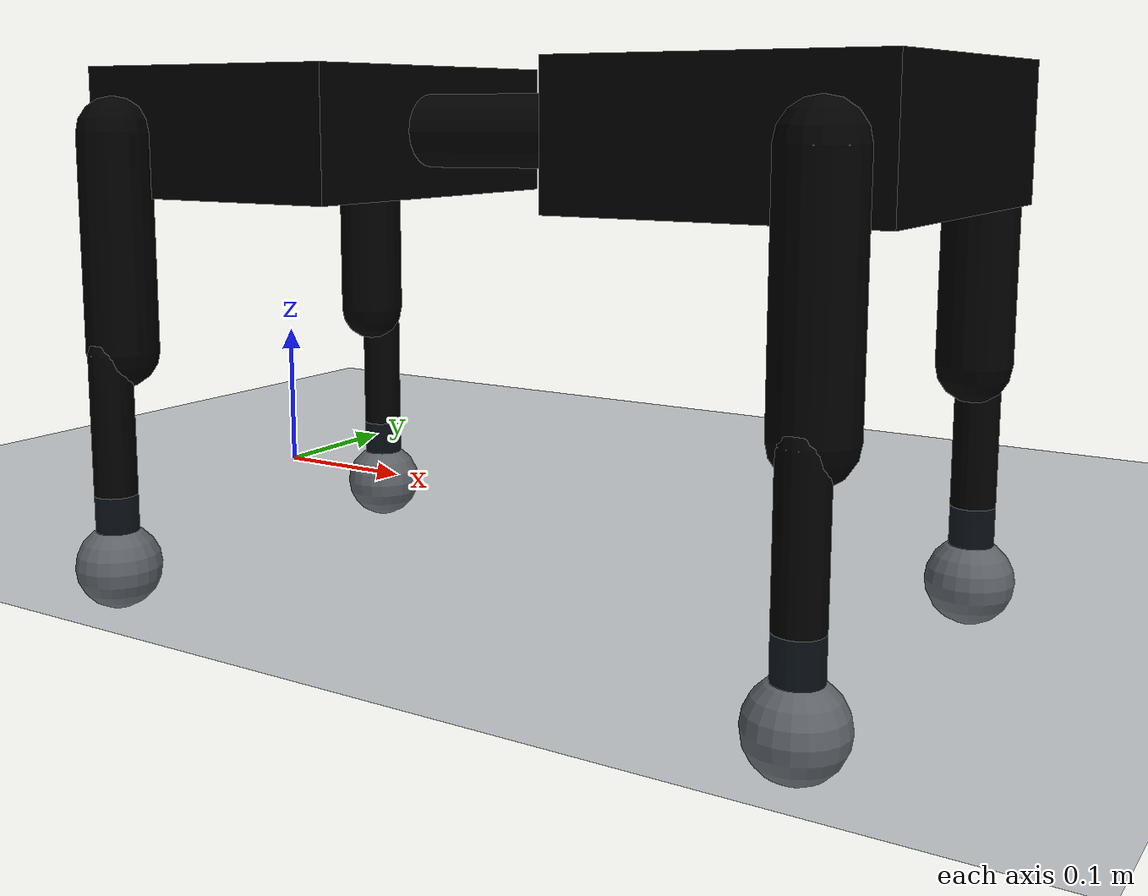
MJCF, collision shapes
<mujoco model="spined_dog">
      <compiler angle="radian" meshdir="./meshes/" balanceinertia="true"/>
      <option timestep="1e-3"
                  iterations="1000"
                  tolerance="1e-8"
                  impratio="1"
                  gravity="0 0 -9.81"
                  solver="CG"
                  cone="elliptic"
                  noslip_iterations="2"/>
      <asset>
            <mesh name="front_body" file="./simplify_front_body.stl" scale="0.001 0.001 0.001"/>
            <mesh name="front_left_leg_upper" file="./front_left_leg_upper.stl"
                  scale="0.001 0.001 0.001"/>
            <mesh name="front_left_leg_lower" file="./front_leg_lower.stl"
                  scale="0.001 0.001 0.001"/>
            <mesh name="front_right_leg_upper" file="./front_right_leg_upper.stl"
                  scale="0.001 0.001 0.001"/>
            <mesh name="front_right_leg_lower" file="./front_leg_lower.stl"
                  scale="0.001 0.001 0.001"/>
            <mesh name="front_spine" file="./front_mid_spine.stl" scale="0.001 0.001 0.001"/>
            <mesh name="hind_spine" file="./hind_mid_spine.stl" scale="0.001 0.001 0.001"/>
            <mesh name="hind_body" file="./simplify_hind_body.stl" scale="0.001 0.001 0.001"/>
            <mesh name="hind_left_leg_upper" file="./hind_left_leg_upper.stl"
                  scale="0.001 0.001 0.001"/>
            <mesh name="hind_left_leg_lower" file="./hind_leg_lower.stl"
                  scale="0.001 0.001 0.001"/>
            <mesh name="hind_right_leg_upper" file="./hind_right_leg_upper.stl"
                  scale="0.001 0.001 0.001"/>
            <mesh name="hind_right_leg_lower" file="./hind_leg_lower.stl"
                  scale="0.001 0.001 0.001"/>

            <texture builtin="gradient" height="256" rgb1=".9 .9 1." rgb2=".2 .3 .4" type="skybox"
                  width="256"/>
            <texture builtin="checker" height="512" name="texplane" rgb1=".2 .3 .4" rgb2=".1 0.15 0.2"
                  type="2d"
                  width="512"/>
            <material name="floorplane" reflectance="0.2" texrepeat="5 5" texture="texplane"
                        texuniform="true"/>
      </asset>

      <default>
            <default class="spined_dog_defaults">
                  <joint axis="0 1 0" range="-10 10" actuatorfrcrange="-120 120" damping="0.1" frictionloss="0.1"/>
                  <motor ctrllimited="true" ctrlrange="-120 120" gear="1"/>
            </default>
            <default class="visual">
                  <geom contype="0" conaffinity="0" group="1" density="0"/>
            </default>
            <default class="foot_collision">
                  <geom type="sphere" size="0.03" contype="2" conaffinity="1" group="3"/>
            </default>
            <default class="body_collision">
                  <geom type="box" contype="2" conaffinity="1" group="3" density="0" rgba="0 0 0 0"/>
            </default>
            <default class="link_collision">
                  <geom type="capsule" contype="2" conaffinity="1" group="3" density="0" rgba="0 0 0 0"/>
            </default>
      </default>

    <worldbody>
    <geom name="floor0" pos="0. 0. 0." size="30 30 0.1" type="plane" contype="1" conaffinity="1" priority="1"
          friction="1 0.005 0.0001" material="floorplane"/>
    <light directional="true" ambient="0.2 0.2 0.2" diffuse="0.8 0.8 0.8" specular="0.3 0.3 0.3"
           castshadow="false" pos="0 0 4" dir="0 0 -1" name="light0"/>

    <body name="hind_body" pos="0 0 0.25" childclass="spined_dog_defaults">
      <freejoint name="root_joint"/>
      <inertial pos="0 0 0" mass="2.044" diaginertia="0.01614 0.007591 0.02169"/>
      <geom class="visual" type="mesh" mesh="hind_body"/>
      <geom name="hind_body_collision" class="body_collision" pos="0.037 0 0" size="0.105 0.125 0.045"/>
      <body name="hind_left_leg_upper" pos="-0.032496964 0.137389577 -0.00028757">
        <inertial pos="0.000884 0.011774 -0.058206" mass="0.252259" diaginertia="0.000873 0.000942 0.000192"/>
        <joint name="joint_hind_left_leg_upper" pos="0 0 0"/>
        <geom class="visual" type="mesh" mesh="hind_left_leg_upper"/>
        <geom name="hind_left_leg_upper_collision" class="link_collision" fromto="0 0 0 0 0 -0.151" size="0.025"/>
        <body name="hind_left_leg_lower" pos="0 0.012 -0.151">
          <inertial pos="0.000327 0 -0.061393" mass="0.051" diaginertia="0.000223 0.000225 0.000005078"/>
          <joint name="joint_hind_left_leg_lower" pos="0 0 0"/>
          <geom class="visual" type="mesh" mesh="hind_left_leg_lower"/>
          <geom name="hind_left_leg_lower_collision" class="link_collision" fromto="0 0 0 0 0 -0.151" size="0.015"/>
          <body name="hind_left_foot" pos="0 0 -0.151">
            <inertial pos="0 0 0" mass="0.01" diaginertia="1e-05 1e-05 1e-05"/>
            <site name="hind_left_foot_site" pos="0 0 0" size="0.01"/>
            <geom name="hind_left_foot_visual" class="visual" type="sphere" size="0.028"/>
            <geom name="hind_left_foot_collision" class="foot_collision"/>
          </body>
        </body>
      </body>
      <body name="hind_right_leg_upper" pos="-0.032496964 -0.136610423 -0.00028757">
        <inertial pos="0.000883 -0.011774 -0.058205" mass="0.252259" diaginertia="0.000873 0.000942 0.000192"/>
        <joint name="joint_hind_right_leg_upper" pos="0 0 0"/>
        <geom class="visual" type="mesh" mesh="hind_right_leg_upper"/>
        <geom name="hind_right_leg_upper_collision" class="link_collision" fromto="0 0 0 0 0 -0.151" size="0.025"/>
        <body name="hind_right_leg_lower" pos="0 -0.012 -0.151">
          <inertial pos="0.000327 0 -0.061393" mass="0.051" diaginertia="0.000223 0.000225 0.000005078"/>
          <joint name="joint_hind_right_leg_lower" pos="0 0 0"/>
          <geom class="visual" type="mesh" mesh="hind_right_leg_lower"/>
          <geom name="hind_right_leg_lower_collision" class="link_collision" fromto="0 0 0 0 0 -0.151" size="0.015"/>
          <body name="hind_right_foot" pos="0 0 -0.151">
            <inertial pos="0 0 0" mass="0.01" diaginertia="1e-05 1e-05 1e-05"/>
            <site name="hind_right_foot_site" pos="0 0 0" size="0.01"/>
            <geom name="hind_right_foot_visual" class="visual" type="sphere" size="0.028"/>
            <geom name="hind_right_foot_collision" class="foot_collision"/>
          </body>
        </body>
      </body>
      <body name="hind_spine" pos="0.106797362 -0.019360423 0.000984733">
        <inertial pos="0.109455866 0.014797864 0" mass="0.399" diaginertia="0.0001953 0.0005357 0.0004759"/>
        <joint name="joint_hind_spine" pos="0 0 0"/>
        <geom class="visual" type="mesh" mesh="hind_spine"/>
        <geom name="hind_spine_collision" class="link_collision" fromto="0 0 0 0.1175 0.036 0" size="0.025"/>
        <body name="front_spine" pos="0.1175 0.036 0">
          <inertial pos="0.05875 0.0073 0" mass="0.052" diaginertia="0.0000036976 0.000084358 0.000082312887603"/>
          <joint name="joint_front_spine" pos="0 0 0"/>
          <geom class="visual" type="mesh" mesh="front_spine"/>
          <geom name="front_spine_collision" class="link_collision" fromto="0 0 0 0.1175 0 0" size="0.02"/>
          <body name="front_body" pos="0.1175 0 0">
            <inertial pos="0.107249862 -0.019360422 -0.002160635" mass="2.044" diaginertia="0.01614 0.007591 0.02169"/>
            <joint name="joint_front_body" pos="0 0 0"/>
            <geom class="visual" type="mesh" mesh="front_body"/>
            <geom name="front_body_collision" class="body_collision" pos="0.07 -0.02 0" size="0.105 0.125 0.045"/>
            <body name="front_left_leg_upper" pos="0.139742934 0.11725 -0.00245609">
              <inertial pos="-0.000883 0.011774 -0.058205" mass="0.252259" diaginertia="0.000873 0.000942 0.000192"/>
              <joint name="joint_front_left_leg_upper" pos="0 0 0"/>
              <geom class="visual" type="mesh" mesh="front_left_leg_upper"/>
              <geom name="front_left_leg_upper_collision" class="link_collision" fromto="0 0 0 0 0 -0.151" size="0.025"/>
              <body name="front_left_leg_lower" pos="0 0.012 -0.151">
                <inertial pos="-0.000327 0 -0.061393" mass="0.051" diaginertia="0.000223 0.000225 0.000005078"/>
                <joint name="joint_front_left_leg_lower" pos="0 0 0"/>
                <geom class="visual" type="mesh" mesh="front_left_leg_lower"/>
                <geom name="front_left_leg_lower_collision" class="link_collision" fromto="0 0 0 0 0 -0.151" size="0.015"/>
                <body name="front_left_foot" pos="0 0 -0.151">
                  <inertial pos="0 0 0" mass="0.01" diaginertia="1e-05 1e-05 1e-05"/>
                  <site name="front_left_foot_site" pos="0 0 0" size="0.01"/>
                  <geom name="front_left_foot_visual" class="visual" type="sphere" size="0.028"/>
                  <geom name="front_left_foot_collision" class="foot_collision"/>
                </body>
              </body>
            </body>
            <body name="front_right_leg_upper" pos="0.139742934 -0.15675 -0.002456609">
              <inertial pos="-0.000884 -0.011774 -0.058206" mass="0.252259" diaginertia="0.000873 0.000942 0.000192"/>
              <joint name="joint_front_right_leg_upper" pos="0 0 0"/>
              <geom class="visual" type="mesh" mesh="front_right_leg_upper"/>
              <geom name="front_right_leg_upper_collision" class="link_collision" fromto="0 0 0 0 0 -0.151" size="0.025"/>
              <body name="front_right_leg_lower" pos="0 -0.012 -0.151">
                <inertial pos="-0.000327 0 -0.061393" mass="0.051" diaginertia="0.000223 0.000225 0.000005078"/>
                <joint name="joint_front_right_leg_lower" pos="0 0 0"/>
                <geom class="visual" type="mesh" mesh="front_right_leg_lower"/>
                <geom name="front_right_leg_lower_collision" class="link_collision" fromto="0 0 0 0 0 -0.151" size="0.015"/>
                <body name="front_right_foot" pos="0 0 -0.151">
                  <inertial pos="0 0 0" mass="0.01" diaginertia="1e-05 1e-05 1e-05"/>
                  <site name="front_right_foot_site" pos="0 0 0" size="0.01"/>
                  <geom name="front_right_foot_visual" class="visual" type="sphere" size="0.028"/>
                  <geom name="front_right_foot_collision" class="foot_collision"/>
                </body>
              </body>
            </body>
          </body>
        </body>
      </body>
    </body>
  </worldbody>

  <actuator>
    <motor class="spined_dog_defaults" joint="joint_hind_left_leg_upper" name="motor_hind_left_leg_upper"/>
    <motor class="spined_dog_defaults" joint="joint_hind_left_leg_lower" name="motor_hind_left_leg_lower"/>
    <motor class="spined_dog_defaults" joint="joint_hind_right_leg_upper" name="motor_hind_right_leg_upper"/>
    <motor class="spined_dog_defaults" joint="joint_hind_right_leg_lower" name="motor_hind_right_leg_lower"/>
    <motor class="spined_dog_defaults" joint="joint_hind_spine" name="motor_hind_spine"/>
    <motor class="spined_dog_defaults" joint="joint_front_spine" name="motor_front_spine"/>
    <motor class="spined_dog_defaults" joint="joint_front_body" name="motor_front_body"/>
    <motor class="spined_dog_defaults" joint="joint_front_left_leg_upper" name="motor_front_left_leg_upper"/>
    <motor class="spined_dog_defaults" joint="joint_front_left_leg_lower" name="motor_front_left_leg_lower"/>
    <motor class="spined_dog_defaults" joint="joint_front_right_leg_upper" name="motor_front_right_leg_upper"/>
    <motor class="spined_dog_defaults" joint="joint_front_right_leg_lower" name="motor_front_right_leg_lower"/>
  </actuator>

  <sensor>
    <jointpos joint="joint_front_left_leg_upper" name="pos_front_left_leg_upper"/>
    <jointpos joint="joint_front_left_leg_lower" name="pos_front_left_leg_lower"/>
    <jointpos joint="joint_front_right_leg_upper" name="pos_front_right_leg_upper"/>
    <jointpos joint="joint_front_right_leg_lower" name="pos_front_right_leg_lower"/>
    <jointpos joint="joint_front_body" name="pos_front_body"/>
    <jointpos joint="joint_front_spine" name="pos_front_spine"/>
    <jointpos joint="joint_hind_spine" name="pos_hind_spine"/>
    <jointpos joint="joint_hind_left_leg_upper" name="pos_hind_left_leg_upper"/>
    <jointpos joint="joint_hind_left_leg_lower" name="pos_hind_left_leg_lower"/>
    <jointpos joint="joint_hind_right_leg_upper" name="pos_hind_right_leg_upper"/>
    <jointpos joint="joint_hind_right_leg_lower" name="pos_hind_right_leg_lower"/>
    <jointvel joint="joint_front_left_leg_upper" name="vel_front_left_leg_upper"/>
    <jointvel joint="joint_front_left_leg_lower" name="vel_front_left_leg_lower"/>
    <jointvel joint="joint_front_right_leg_upper" name="vel_front_right_leg_upper"/>
    <jointvel joint="joint_front_right_leg_lower" name="vel_front_right_leg_lower"/>
    <jointvel joint="joint_front_body" name="vel_front_body"/>
    <jointvel joint="joint_front_spine" name="vel_front_spine"/>
    <jointvel joint="joint_hind_spine" name="vel_hind_spine"/>
    <jointvel joint="joint_hind_left_leg_upper" name="vel_hind_left_leg_upper"/>
    <jointvel joint="joint_hind_left_leg_lower" name="vel_hind_left_leg_lower"/>
    <jointvel joint="joint_hind_right_leg_upper" name="vel_hind_right_leg_upper"/>
    <jointvel joint="joint_hind_right_leg_lower" name="vel_hind_right_leg_lower"/>
    <jointactuatorfrc joint="joint_front_left_leg_upper" name="torque_front_left_leg_upper"/>
    <jointactuatorfrc joint="joint_front_left_leg_lower" name="torque_front_left_leg_lower"/>
    <jointactuatorfrc joint="joint_front_right_leg_upper" name="torque_front_right_leg_upper"/>
    <jointactuatorfrc joint="joint_front_right_leg_lower" name="torque_front_right_leg_lower"/>
    <jointactuatorfrc joint="joint_front_body" name="torque_front_body"/>
    <jointactuatorfrc joint="joint_front_spine" name="torque_front_spine"/>
    <jointactuatorfrc joint="joint_hind_spine" name="torque_hind_spine"/>
    <jointactuatorfrc joint="joint_hind_left_leg_upper" name="torque_hind_left_leg_upper"/>
    <jointactuatorfrc joint="joint_hind_left_leg_lower" name="torque_hind_left_leg_lower"/>
    <jointactuatorfrc joint="joint_hind_right_leg_upper" name="torque_hind_right_leg_upper"/>
    <jointactuatorfrc joint="joint_hind_right_leg_lower" name="torque_hind_right_leg_lower"/>
    <framelinvel objtype="body" objname="hind_body" name="hind_body_framelinvel"/>
    <frameangvel objtype="body" objname="hind_body" name="hind_body_frameangvel"/>
    <framequat objtype="body" objname="hind_body" name="hind_body_framequat"/>
    <touch name="hind_left_foot_touch" site="hind_left_foot_site"/>
    <touch name="hind_right_foot_touch" site="hind_right_foot_site"/>
    <touch name="front_left_foot_touch" site="front_left_foot_site"/>
    <touch name="front_right_foot_touch" site="front_right_foot_site"/>
  </sensor>
</mujoco>
